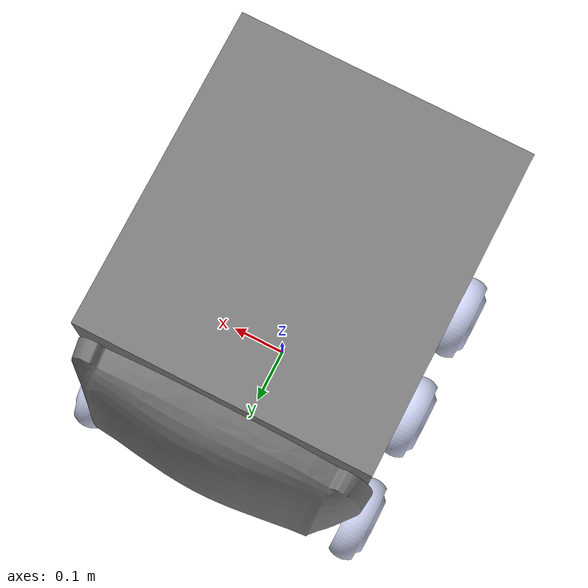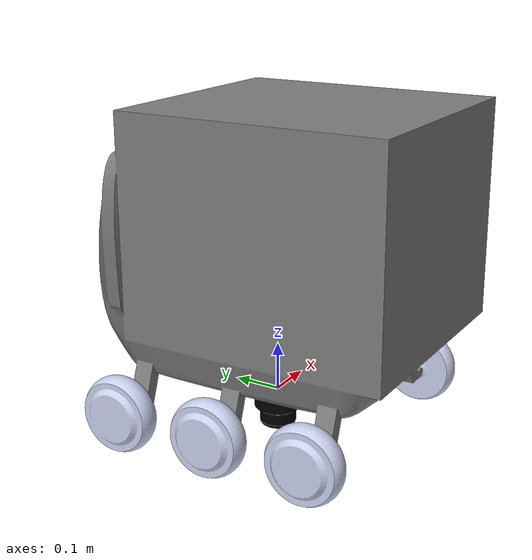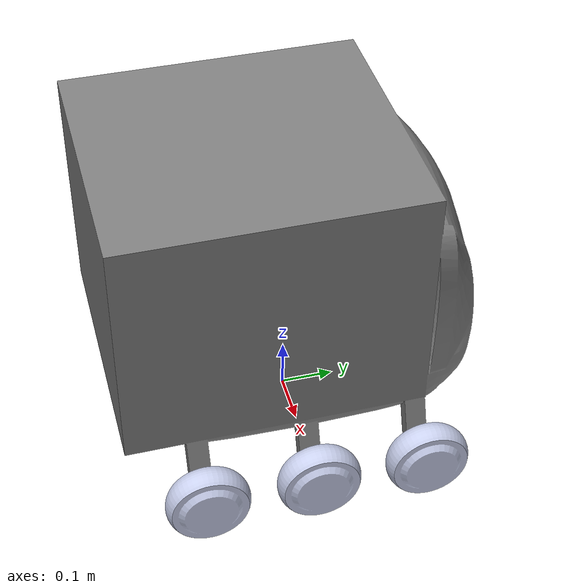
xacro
<?xml version="1.0" encoding="utf-8"?>
<robot
  name="robot_006" xmlns:xacro="http://www.ros.org/wiki/xacro">
  <xacro:include filename="$(find robot_006)/robot_006_description/urdf/robot_006.gazebo.xacro" />
  <link name="dummy">
   </link>
  <link
    name="base_link">
    <inertial>
      <origin
        xyz="0.0028535 0.34369 0.067012"
        rpy="0 0 0" />
      <mass
        value="6.3834" />
      <inertia
        ixx="0.34574"
        ixy="2.7545E-05"
        ixz="4.4178E-16"
        iyy="0.37646"
        iyz="6.8636E-16"
        izz="0.30569" />
    </inertial>
    <visual>
      <origin
        xyz="0 0 0"
        rpy="0 0 0" />
      <geometry>
        <mesh
          filename="package://robot_006/robot_006_description/meshes/base_link.STL" />
      </geometry>
      <material
        name="black">
        <color
          rgba="0.49804 0.49804 0.49804 1" />
        <texture
          filename="package://robot_006/robot_006_description/textures/black.jpg" />
      </material>
    </visual>
    <collision>
      <origin
        xyz="0 0 0"
        rpy="0 0 0" />
      <geometry>
        <mesh
          filename="package://robot_006/robot_006_description/meshes/base_link.STL" />
      </geometry>
    </collision>
  </link>
  <joint name="dummy_joint" type="fixed">
     <parent link="dummy"/>
     <child link="base_link"/>
  </joint>
  <link
    name="left_wheel_01_link">
    <inertial>
      <origin
        xyz="0.0810455771702411 -8.67361737988404E-18 0"
        rpy="0 0 0" />
      <mass
        value="7.38632836745033" />
      <inertia
        ixx="0.0208460115156416"
        ixy="-7.30031821441943E-19"
        ixz="1.40926829579469E-18"
        iyy="0.0121153656310422"
        iyz="-7.58941520739853E-19"
        izz="0.0121153656310422" />
    </inertial>
    <visual>
      <origin
        xyz="0 0 0"
        rpy="0 0 0" />
      <geometry>
        <mesh
          filename="package://robot_006/robot_006_description/meshes/left_wheel_01_link.STL" />
      </geometry>
      <material
        name="">
        <color
          rgba="0.792156862745098 0.819607843137255 0.933333333333333 1" />
      </material>
    </visual>
    <collision>
      <origin
        xyz="0 0 0"
        rpy="0 0 0" />
      <geometry>
        <mesh
          filename="package://robot_006/robot_006_description/meshes/left_wheel_01_link.STL" />
      </geometry>
    </collision>
  </link>
  <joint
    name="Left_wheel_01_link"
    type="continuous">
    <origin
      xyz="-0.18382 0.21 0"
      rpy="1.6176 0 3.1416" />
    <parent
      link="base_link" />
    <child
      link="left_wheel_01_link" />
    <axis
      xyz="1 0 0" />
  </joint>
  <link
    name="left_wheel_02_link">
    <inertial>
      <origin
        xyz="0.0810455771702411 2.87112417300684E-19 1.17130577147236E-17"
        rpy="0 0 0" />
      <mass
        value="7.38632836745033" />
      <inertia
        ixx="0.0208460115156416"
        ixy="-5.32200053630169E-19"
        ixz="1.69064860125389E-18"
        iyy="0.0121153656310422"
        iyz="2.16840434497101E-18"
        izz="0.0121153656310422" />
    </inertial>
    <visual>
      <origin
        xyz="0 0 0"
        rpy="0 0 0" />
      <geometry>
        <mesh
          filename="package://robot_006/robot_006_description/meshes/left_wheel_02_link.STL" />
      </geometry>
      <material
        name="">
        <color
          rgba="0.792156862745098 0.819607843137255 0.933333333333333 1" />
      </material>
    </visual>
    <collision>
      <origin
        xyz="0 0 0"
        rpy="0 0 0" />
      <geometry>
        <mesh
          filename="package://robot_006/robot_006_description/meshes/left_wheel_02_link.STL" />
      </geometry>
    </collision>
  </link>
  <joint
    name="Left_wheel_02_link"
    type="continuous">
    <origin
      xyz="-0.18382 0 0"
      rpy="2.4353 0 -3.1416" />
    <parent
      link="base_link" />
    <child
      link="left_wheel_02_link" />
    <axis
      xyz="1 0 0" />
  </joint>
  <link
    name="left_wheel_03_link">
    <inertial>
      <origin
        xyz="0.0810455771702411 0 -5.55111512312578E-17"
        rpy="0 0 0" />
      <mass
        value="7.38632836745033" />
      <inertia
        ixx="0.0208460115156416"
        ixy="1.42504187367709E-19"
        ixz="-2.9721660450084E-19"
        iyy="0.0121153656310422"
        iyz="0"
        izz="0.0121153656310422" />
    </inertial>
    <visual>
      <origin
        xyz="0 0 0"
        rpy="0 0 0" />
      <geometry>
        <mesh
          filename="package://robot_006/robot_006_description/meshes/left_wheel_03_link.STL" />
      </geometry>
      <material
        name="">
        <color
          rgba="0.792156862745098 0.819607843137255 0.933333333333333 1" />
      </material>
    </visual>
    <collision>
      <origin
        xyz="0 0 0"
        rpy="0 0 0" />
      <geometry>
        <mesh
          filename="package://robot_006/robot_006_description/meshes/left_wheel_03_link.STL" />
      </geometry>
    </collision>
  </link>
  <joint
    name="Left_wheel_03_link"
    type="continuous">
    <origin
      xyz="-0.18382 -0.21 0"
      rpy="1.6982 0 3.1416" />
    <parent
      link="base_link" />
    <child
      link="left_wheel_03_link" />
    <axis
      xyz="1 0 0" />
  </joint>
  <link
    name="right_wheel_01_link">
    <inertial>
      <origin
        xyz="0.0810455771702411 -1.33465102787837E-18 0"
        rpy="0 0 0" />
      <mass
        value="7.38632836745033" />
      <inertia
        ixx="0.0208460115156416"
        ixy="4.04941442896144E-19"
        ixz="5.05940785059499E-19"
        iyy="0.0121153656310422"
        iyz="-1.3156256345534E-18"
        izz="0.0121153656310422" />
    </inertial>
    <visual>
      <origin
        xyz="0 0 0"
        rpy="0 0 0" />
      <geometry>
        <mesh
          filename="package://robot_006/robot_006_description/meshes/right_wheel_01_link.STL" />
      </geometry>
      <material
        name="">
        <color
          rgba="0.792156862745098 0.819607843137255 0.933333333333333 1" />
      </material>
    </visual>
    <collision>
      <origin
        xyz="0 0 0"
        rpy="0 0 0" />
      <geometry>
        <mesh
          filename="package://robot_006/robot_006_description/meshes/right_wheel_01_link.STL" />
      </geometry>
    </collision>
  </link>
  <joint
    name="Right_wheel_01_link"
    type="continuous">
    <origin
      xyz="0.18382 0.21 0"
      rpy="1.5708 0 0" />
    <parent
      link="base_link" />
    <child
      link="right_wheel_01_link" />
    <axis
      xyz="1 0 0" />
  </joint>
  <link
    name="right_wheel_02_link">
    <inertial>
      <origin
        xyz="0.081045577170241 -1.33465102787837E-18 2.94364146830802E-19"
        rpy="0 0 0" />
      <mass
        value="7.38632836745033" />
      <inertia
        ixx="0.0208460115156416"
        ixy="4.04941442896144E-19"
        ixz="5.05940785059499E-19"
        iyy="0.0121153656310422"
        iyz="-1.3156256345534E-18"
        izz="0.0121153656310422" />
    </inertial>
    <visual>
      <origin
        xyz="0 0 0"
        rpy="0 0 0" />
      <geometry>
        <mesh
          filename="package://robot_006/robot_006_description/meshes/right_wheel_02_link.STL" />
      </geometry>
      <material
        name="">
        <color
          rgba="0.792156862745098 0.819607843137255 0.933333333333333 1" />
      </material>
    </visual>
    <collision>
      <origin
        xyz="0 0 0"
        rpy="0 0 0" />
      <geometry>
        <mesh
          filename="package://robot_006/robot_006_description/meshes/right_wheel_02_link.STL" />
      </geometry>
    </collision>
  </link>
  <joint
    name="Right_wheel_02_link"
    type="continuous">
    <origin
      xyz="0.18382 0 0"
      rpy="1.5708 0 0" />
    <parent
      link="base_link" />
    <child
      link="right_wheel_02_link" />
    <axis
      xyz="1 0 0" />
  </joint>
  <link
    name="right_wheel_03_link">
    <inertial>
      <origin
        xyz="0.0810455771702411 -2.77555756156289E-17 5.55111512312578E-17"
        rpy="0 0 0" />
      <mass
        value="7.38632836745033" />
      <inertia
        ixx="0.0208460115156416"
        ixy="2.044350574312E-19"
        ixz="-1.00448384628692E-18"
        iyy="0.0121153656310422"
        iyz="2.60208521396521E-18"
        izz="0.0121153656310422" />
    </inertial>
    <visual>
      <origin
        xyz="0 0 0"
        rpy="0 0 0" />
      <geometry>
        <mesh
          filename="package://robot_006/robot_006_description/meshes/right_wheel_03_link.STL" />
      </geometry>
      <material
        name="">
        <color
          rgba="0.792156862745098 0.819607843137255 0.933333333333333 1" />
      </material>
    </visual>
    <collision>
      <origin
        xyz="0 0 0"
        rpy="0 0 0" />
      <geometry>
        <mesh
          filename="package://robot_006/robot_006_description/meshes/right_wheel_03_link.STL" />
      </geometry>
    </collision>
  </link>
  <joint
    name="Right_wheel_03_link"
    type="continuous">
    <origin
      xyz="0.18382 -0.21 0"
      rpy="1.3303 0 0" />
    <parent
      link="base_link" />
    <child
      link="right_wheel_03_link" />
    <axis
      xyz="1 0 0" />
  </joint>

  <link
    name="Lidar_Link">
    <inertial>
      <origin
        xyz="-2.0279E-17 6.3357E-17 0.034217"
        rpy="0 0 0" />
      <mass
        value="0.49143" />
      <inertia
        ixx="0.00049933"
        ixy="-5.421E-20"
        ixz="4.3436E-22"
        iyy="0.00049933"
        iyz="-1.8845E-20"
        izz="0.00051729" />
    </inertial>
    <visual>
      <origin
        xyz="0 0 0"
        rpy="0 0 0" />
      <geometry>
        <mesh
          filename="package://robotfin/src/robotfin_description/meshes/Lidar_Link.STL" />
      </geometry>
      <material
        name="">
        <color
          rgba="0 0 0 1" />
      </material>
    </visual>
    <collision>
      <origin
        xyz="0 0 0"
        rpy="0 0 0" />
      <geometry>
        <mesh
          filename="package://robotfin/src/robotfin_description/meshes/Lidar_Link.STL" />
      </geometry>
    </collision>
  </link>
  <joint
    name="lidar_link"
    type="fixed">
    <origin
      xyz="0 0 0.605"
      rpy="0 0 0.90255" />
    <parent
      link="base_link" />
    <child
      link="Lidar_Link" />
    <axis
      xyz="0 0 0" />
  </joint>

</robot>
